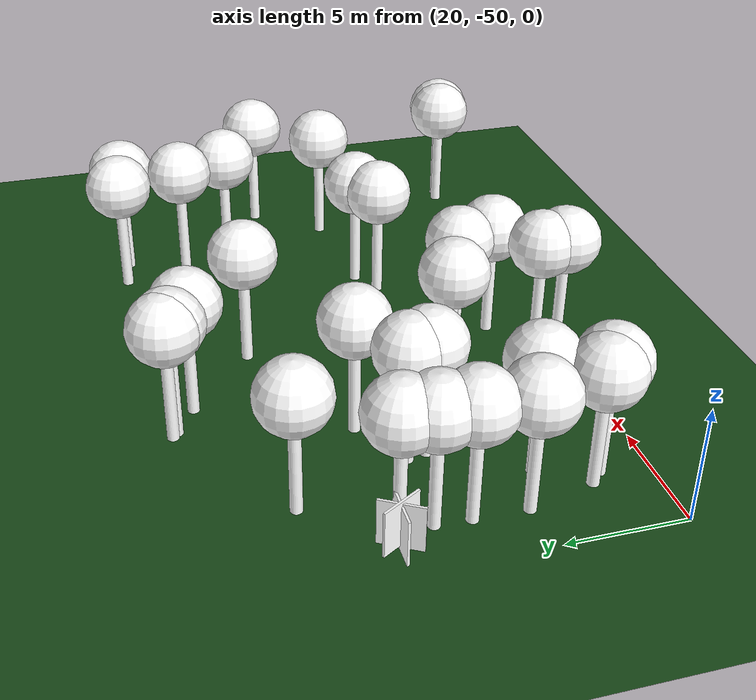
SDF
<sdf version="1.8">
 <world name="forest_world">
  <model name="fire_11">
   <pose>21.34 -39.31 1.00 0 0 0.00</pose>
   <static>true</static>
   <link name="fire_link">
    <visual name="fire_11_fire_main_0">
     <geometry><box><size>1.80 0.10 2.00</size></box></geometry>
     <material>
      <ambient>0.7 0.35 0.0 1</ambient>
      <diffuse>1 1 1 1</diffuse>
      <specular>0 0 0 1</specular>
      <emissive>0 0 0 1</emissive>
      <pbr>
       <metal><albedo_map>textures/fire.png</albedo_map><metalness>0.0</metalness><roughness>0.6</roughness></metal>
      </pbr>
     </material>
     <transparency>0.0</transparency>
     <cast_shadows>false</cast_shadows>
    </visual>
    <visual name="fire_11_fire_60_1">
     <pose>0.00 0.00 0.10 0 0 1.05</pose>
     <geometry><box><size>1.80 0.10 2.00</size></box></geometry>
     <material>
      <ambient>0.7 0.35 0.0 1</ambient>
      <diffuse>1 1 1 1</diffuse>
      <specular>0 0 0 1</specular>
      <emissive>0 0 0 1</emissive>
      <pbr>
       <metal><albedo_map>textures/fire.png</albedo_map><metalness>0.0</metalness><roughness>0.6</roughness></metal>
      </pbr>
     </material>
     <transparency>0.0</transparency>
     <cast_shadows>false</cast_shadows>
    </visual>
    <visual name="fire_11_fire_120_2">
     <pose>0.00 0.00 0.20 0 0 2.09</pose>
     <geometry><box><size>1.80 0.10 2.00</size></box></geometry>
     <material>
      <ambient>0.7 0.35 0.0 1</ambient>
      <diffuse>1 1 1 1</diffuse>
      <specular>0 0 0 1</specular>
      <emissive>0 0 0 1</emissive>
      <pbr>
       <metal><albedo_map>textures/fire.png</albedo_map><metalness>0.0</metalness><roughness>0.6</roughness></metal>
      </pbr>
     </material>
     <transparency>0.0</transparency>
     <cast_shadows>false</cast_shadows>
    </visual>
    <light type="point" name="fire_11_light_0">
     <pose>0.40 0.00 0.50 0 0 0</pose>
     <diffuse>1.0 0.7 0.3 1</diffuse>
     <specular>1.0 0.8 0.3 1</specular>
     <intensity>2</intensity>
     <attenuation>
      <range>2</range>
      <constant>0.1</constant>
      <linear>0.05</linear>
      <quadratic>0.02</quadratic>
     </attenuation>
     <cast_shadows>false</cast_shadows>
    </light>
    <light type="point" name="fire_11_light_1">
     <pose>-0.20 0.35 0.50 0 0 0</pose>
     <diffuse>1.0 0.7 0.3 1</diffuse>
     <specular>1.0 0.8 0.3 1</specular>
     <intensity>2</intensity>
     <attenuation>
      <range>2</range>
      <constant>0.1</constant>
      <linear>0.05</linear>
      <quadratic>0.02</quadratic>
     </attenuation>
     <cast_shadows>false</cast_shadows>
    </light>
    <light type="point" name="fire_11_light_2">
     <pose>-0.20 -0.35 0.50 0 0 0</pose>
     <diffuse>1.0 0.7 0.3 1</diffuse>
     <specular>1.0 0.8 0.3 1</specular>
     <intensity>2</intensity>
     <attenuation>
      <range>2</range>
      <constant>0.1</constant>
      <linear>0.05</linear>
      <quadratic>0.02</quadratic>
     </attenuation>
     <cast_shadows>false</cast_shadows>
    </light>
   </link>
   <plugin filename="libignition-gazebo-pose-publisher-system.so" name="ignition::gazebo::systems::PosePublisher">
    <frame_id>world</frame_id>
    <publish_link_pose>true</publish_link_pose>
    <use_pose_vector_msg>true</use_pose_vector_msg>
    <static_publisher>true</static_publisher>
    <static_update_frequency>1</static_update_frequency>
   </plugin>
  </model>
  <model name="tree_simple494">
   <static>1</static>
   <link name="link">
    <pose>0 0 0.1 0 -0 0</pose>
    <collision name="collision_trunk">
     <pose>0 0 2 0 -0 0</pose>
     <geometry><cylinder><radius>0.25</radius><length>4</length></cylinder></geometry>
    </collision>
    <collision name="collision_treetop">
     <pose>0 0 5.2 0 -0 0</pose>
     <geometry><sphere><radius>1.5</radius></sphere></geometry>
    </collision>
    <visual name="trunk">
     <pose>0 0 2 0 -0 0</pose>
     <geometry><cylinder><radius>0.25</radius><length>4</length></cylinder></geometry>
     <material>
      <ambient>0.5 0.5 0.5 1</ambient>
      <diffuse>1.0 1.0 1.0 1</diffuse>
      <specular>0.0 0.0 0.0 1</specular>
      <pbr>
       <metal>
        <albedo_map>../worlds/textures/tree_simple_trunk.jpg</albedo_map>
        <metalness>0.0</metalness>
        <roughness>0.8</roughness>
       </metal>
      </pbr>
     </material>
    </visual>
    <visual name="treetop">
     <pose>0 0 5.2 0 -0 0</pose>
     <geometry><sphere><radius>1.5</radius></sphere></geometry>
     <material>
      <ambient>0.5 0.5 0.5 1</ambient>
      <diffuse>1.0 1.0 1.0 1</diffuse>
      <specular>0.0 0.0 0.0 1</specular>
      <pbr>
       <metal>
        <albedo_map>../worlds/textures/tree_simple_treetop.jpg</albedo_map>
        <metalness>0.0</metalness>
        <roughness>0.9</roughness>
       </metal>
      </pbr>
     </material>
    </visual>
   </link>
   <pose>39.6521252177 -42.647901406 0 0 -0 0</pose>
  </model>
  <model name="tree_simple456">
   <static>1</static>
   <link name="link">
    <pose>0 0 0.1 0 -0 0</pose>
    <collision name="collision_trunk">
     <pose>0 0 2 0 -0 0</pose>
     <geometry><cylinder><radius>0.25</radius><length>4</length></cylinder></geometry>
    </collision>
    <collision name="collision_treetop">
     <pose>0 0 5.2 0 -0 0</pose>
     <geometry><sphere><radius>1.5</radius></sphere></geometry>
    </collision>
    <visual name="trunk">
     <pose>0 0 2 0 -0 0</pose>
     <geometry><cylinder><radius>0.25</radius><length>4</length></cylinder></geometry>
     <material>
      <ambient>0.5 0.5 0.5 1</ambient>
      <diffuse>1.0 1.0 1.0 1</diffuse>
      <specular>0.0 0.0 0.0 1</specular>
      <pbr>
       <metal>
        <albedo_map>../worlds/textures/tree_simple_trunk.jpg</albedo_map>
        <metalness>0.0</metalness>
        <roughness>0.8</roughness>
       </metal>
      </pbr>
     </material>
    </visual>
    <visual name="treetop">
     <pose>0 0 5.2 0 -0 0</pose>
     <geometry><sphere><radius>1.5</radius></sphere></geometry>
     <material>
      <ambient>0.5 0.5 0.5 1</ambient>
      <diffuse>1.0 1.0 1.0 1</diffuse>
      <specular>0.0 0.0 0.0 1</specular>
      <pbr>
       <metal>
        <albedo_map>../worlds/textures/tree_simple_treetop.jpg</albedo_map>
        <metalness>0.0</metalness>
        <roughness>0.9</roughness>
       </metal>
      </pbr>
     </material>
    </visual>
   </link>
   <pose>23.2076568155 -47.8591592767 0 0 -0 0</pose>
  </model>
  <model name="tree_simple423">
   <static>1</static>
   <link name="link">
    <pose>0 0 0.1 0 -0 0</pose>
    <collision name="collision_trunk">
     <pose>0 0 2 0 -0 0</pose>
     <geometry><cylinder><radius>0.25</radius><length>4</length></cylinder></geometry>
    </collision>
    <collision name="collision_treetop">
     <pose>0 0 5.2 0 -0 0</pose>
     <geometry><sphere><radius>1.5</radius></sphere></geometry>
    </collision>
    <visual name="trunk">
     <pose>0 0 2 0 -0 0</pose>
     <geometry><cylinder><radius>0.25</radius><length>4</length></cylinder></geometry>
     <material>
      <ambient>0.5 0.5 0.5 1</ambient>
      <diffuse>1.0 1.0 1.0 1</diffuse>
      <specular>0.0 0.0 0.0 1</specular>
      <pbr>
       <metal>
        <albedo_map>../worlds/textures/tree_simple_trunk.jpg</albedo_map>
        <metalness>0.0</metalness>
        <roughness>0.8</roughness>
       </metal>
      </pbr>
     </material>
    </visual>
    <visual name="treetop">
     <pose>0 0 5.2 0 -0 0</pose>
     <geometry><sphere><radius>1.5</radius></sphere></geometry>
     <material>
      <ambient>0.5 0.5 0.5 1</ambient>
      <diffuse>1.0 1.0 1.0 1</diffuse>
      <specular>0.0 0.0 0.0 1</specular>
      <pbr>
       <metal>
        <albedo_map>../worlds/textures/tree_simple_treetop.jpg</albedo_map>
        <metalness>0.0</metalness>
        <roughness>0.9</roughness>
       </metal>
      </pbr>
     </material>
    </visual>
   </link>
   <pose>22.6666902857 -47.3463091406 0 0 -0 0</pose>
  </model>
  <model name="tree_simple422">
   <static>1</static>
   <link name="link">
    <pose>0 0 0.1 0 -0 0</pose>
    <collision name="collision_trunk">
     <pose>0 0 2 0 -0 0</pose>
     <geometry><cylinder><radius>0.25</radius><length>4</length></cylinder></geometry>
    </collision>
    <collision name="collision_treetop">
     <pose>0 0 5.2 0 -0 0</pose>
     <geometry><sphere><radius>1.5</radius></sphere></geometry>
    </collision>
    <visual name="trunk">
     <pose>0 0 2 0 -0 0</pose>
     <geometry><cylinder><radius>0.25</radius><length>4</length></cylinder></geometry>
     <material>
      <ambient>0.5 0.5 0.5 1</ambient>
      <diffuse>1.0 1.0 1.0 1</diffuse>
      <specular>0.0 0.0 0.0 1</specular>
      <pbr>
       <metal>
        <albedo_map>../worlds/textures/tree_simple_trunk.jpg</albedo_map>
        <metalness>0.0</metalness>
        <roughness>0.8</roughness>
       </metal>
      </pbr>
     </material>
    </visual>
    <visual name="treetop">
     <pose>0 0 5.2 0 -0 0</pose>
     <geometry><sphere><radius>1.5</radius></sphere></geometry>
     <material>
      <ambient>0.5 0.5 0.5 1</ambient>
      <diffuse>1.0 1.0 1.0 1</diffuse>
      <specular>0.0 0.0 0.0 1</specular>
      <pbr>
       <metal>
        <albedo_map>../worlds/textures/tree_simple_treetop.jpg</albedo_map>
        <metalness>0.0</metalness>
        <roughness>0.9</roughness>
       </metal>
      </pbr>
     </material>
    </visual>
   </link>
   <pose>46.9340594409 -49.3003062786 0 0 -0 0</pose>
  </model>
  <model name="tree_simple406">
   <static>1</static>
   <link name="link">
    <pose>0 0 0.1 0 -0 0</pose>
    <collision name="collision_trunk">
     <pose>0 0 2 0 -0 0</pose>
     <geometry><cylinder><radius>0.25</radius><length>4</length></cylinder></geometry>
    </collision>
    <collision name="collision_treetop">
     <pose>0 0 5.2 0 -0 0</pose>
     <geometry><sphere><radius>1.5</radius></sphere></geometry>
    </collision>
    <visual name="trunk">
     <pose>0 0 2 0 -0 0</pose>
     <geometry><cylinder><radius>0.25</radius><length>4</length></cylinder></geometry>
     <material>
      <ambient>0.5 0.5 0.5 1</ambient>
      <diffuse>1.0 1.0 1.0 1</diffuse>
      <specular>0.0 0.0 0.0 1</specular>
      <pbr>
       <metal>
        <albedo_map>../worlds/textures/tree_simple_trunk.jpg</albedo_map>
        <metalness>0.0</metalness>
        <roughness>0.8</roughness>
       </metal>
      </pbr>
     </material>
    </visual>
    <visual name="treetop">
     <pose>0 0 5.2 0 -0 0</pose>
     <geometry><sphere><radius>1.5</radius></sphere></geometry>
     <material>
      <ambient>0.5 0.5 0.5 1</ambient>
      <diffuse>1.0 1.0 1.0 1</diffuse>
      <specular>0.0 0.0 0.0 1</specular>
      <pbr>
       <metal>
        <albedo_map>../worlds/textures/tree_simple_treetop.jpg</albedo_map>
        <metalness>0.0</metalness>
        <roughness>0.9</roughness>
       </metal>
      </pbr>
     </material>
    </visual>
   </link>
   <pose>31.8934217089 -48.8403630258 0 0 -0 0</pose>
  </model>
  <model name="tree_simple399">
   <static>1</static>
   <link name="link">
    <pose>0 0 0.1 0 -0 0</pose>
    <collision name="collision_trunk">
     <pose>0 0 2 0 -0 0</pose>
     <geometry><cylinder><radius>0.25</radius><length>4</length></cylinder></geometry>
    </collision>
    <collision name="collision_treetop">
     <pose>0 0 5.2 0 -0 0</pose>
     <geometry><sphere><radius>1.5</radius></sphere></geometry>
    </collision>
    <visual name="trunk">
     <pose>0 0 2 0 -0 0</pose>
     <geometry><cylinder><radius>0.25</radius><length>4</length></cylinder></geometry>
     <material>
      <ambient>0.5 0.5 0.5 1</ambient>
      <diffuse>1.0 1.0 1.0 1</diffuse>
      <specular>0.0 0.0 0.0 1</specular>
      <pbr>
       <metal>
        <albedo_map>../worlds/textures/tree_simple_trunk.jpg</albedo_map>
        <metalness>0.0</metalness>
        <roughness>0.8</roughness>
       </metal>
      </pbr>
     </material>
    </visual>
    <visual name="treetop">
     <pose>0 0 5.2 0 -0 0</pose>
     <geometry><sphere><radius>1.5</radius></sphere></geometry>
     <material>
      <ambient>0.5 0.5 0.5 1</ambient>
      <diffuse>1.0 1.0 1.0 1</diffuse>
      <specular>0.0 0.0 0.0 1</specular>
      <pbr>
       <metal>
        <albedo_map>../worlds/textures/tree_simple_treetop.jpg</albedo_map>
        <metalness>0.0</metalness>
        <roughness>0.9</roughness>
       </metal>
      </pbr>
     </material>
    </visual>
   </link>
   <pose>28.1463540184 -39.4724503771 0 0 -0 0</pose>
  </model>
  <model name="tree_simple362">
   <static>1</static>
   <link name="link">
    <pose>0 0 0.1 0 -0 0</pose>
    <collision name="collision_trunk">
     <pose>0 0 2 0 -0 0</pose>
     <geometry><cylinder><radius>0.25</radius><length>4</length></cylinder></geometry>
    </collision>
    <collision name="collision_treetop">
     <pose>0 0 5.2 0 -0 0</pose>
     <geometry><sphere><radius>1.5</radius></sphere></geometry>
    </collision>
    <visual name="trunk">
     <pose>0 0 2 0 -0 0</pose>
     <geometry><cylinder><radius>0.25</radius><length>4</length></cylinder></geometry>
     <material>
      <ambient>0.5 0.5 0.5 1</ambient>
      <diffuse>1.0 1.0 1.0 1</diffuse>
      <specular>0.0 0.0 0.0 1</specular>
      <pbr>
       <metal>
        <albedo_map>../worlds/textures/tree_simple_trunk.jpg</albedo_map>
        <metalness>0.0</metalness>
        <roughness>0.8</roughness>
       </metal>
      </pbr>
     </material>
    </visual>
    <visual name="treetop">
     <pose>0 0 5.2 0 -0 0</pose>
     <geometry><sphere><radius>1.5</radius></sphere></geometry>
     <material>
      <ambient>0.5 0.5 0.5 1</ambient>
      <diffuse>1.0 1.0 1.0 1</diffuse>
      <specular>0.0 0.0 0.0 1</specular>
      <pbr>
       <metal>
        <albedo_map>../worlds/textures/tree_simple_treetop.jpg</albedo_map>
        <metalness>0.0</metalness>
        <roughness>0.9</roughness>
       </metal>
      </pbr>
     </material>
    </visual>
   </link>
   <pose>44.985496552 -42.1503793978 0 0 -0 0</pose>
  </model>
  <model name="tree_simple355">
   <static>1</static>
   <link name="link">
    <pose>0 0 0.1 0 -0 0</pose>
    <collision name="collision_trunk">
     <pose>0 0 2 0 -0 0</pose>
     <geometry><cylinder><radius>0.25</radius><length>4</length></cylinder></geometry>
    </collision>
    <collision name="collision_treetop">
     <pose>0 0 5.2 0 -0 0</pose>
     <geometry><sphere><radius>1.5</radius></sphere></geometry>
    </collision>
    <visual name="trunk">
     <pose>0 0 2 0 -0 0</pose>
     <geometry><cylinder><radius>0.25</radius><length>4</length></cylinder></geometry>
     <material>
      <ambient>0.5 0.5 0.5 1</ambient>
      <diffuse>1.0 1.0 1.0 1</diffuse>
      <specular>0.0 0.0 0.0 1</specular>
      <pbr>
       <metal>
        <albedo_map>../worlds/textures/tree_simple_trunk.jpg</albedo_map>
        <metalness>0.0</metalness>
        <roughness>0.8</roughness>
       </metal>
      </pbr>
     </material>
    </visual>
    <visual name="treetop">
     <pose>0 0 5.2 0 -0 0</pose>
     <geometry><sphere><radius>1.5</radius></sphere></geometry>
     <material>
      <ambient>0.5 0.5 0.5 1</ambient>
      <diffuse>1.0 1.0 1.0 1</diffuse>
      <specular>0.0 0.0 0.0 1</specular>
      <pbr>
       <metal>
        <albedo_map>../worlds/textures/tree_simple_treetop.jpg</albedo_map>
        <metalness>0.0</metalness>
        <roughness>0.9</roughness>
       </metal>
      </pbr>
     </material>
    </visual>
   </link>
   <pose>25.975286884 -41.7874404901 0 0 -0 0</pose>
  </model>
  <model name="tree_simple329">
   <static>1</static>
   <link name="link">
    <pose>0 0 0.1 0 -0 0</pose>
    <collision name="collision_trunk">
     <pose>0 0 2 0 -0 0</pose>
     <geometry><cylinder><radius>0.25</radius><length>4</length></cylinder></geometry>
    </collision>
    <collision name="collision_treetop">
     <pose>0 0 5.2 0 -0 0</pose>
     <geometry><sphere><radius>1.5</radius></sphere></geometry>
    </collision>
    <visual name="trunk">
     <pose>0 0 2 0 -0 0</pose>
     <geometry><cylinder><radius>0.25</radius><length>4</length></cylinder></geometry>
     <material>
      <ambient>0.5 0.5 0.5 1</ambient>
      <diffuse>1.0 1.0 1.0 1</diffuse>
      <specular>0.0 0.0 0.0 1</specular>
      <pbr>
       <metal>
        <albedo_map>../worlds/textures/tree_simple_trunk.jpg</albedo_map>
        <metalness>0.0</metalness>
        <roughness>0.8</roughness>
       </metal>
      </pbr>
     </material>
    </visual>
    <visual name="treetop">
     <pose>0 0 5.2 0 -0 0</pose>
     <geometry><sphere><radius>1.5</radius></sphere></geometry>
     <material>
      <ambient>0.5 0.5 0.5 1</ambient>
      <diffuse>1.0 1.0 1.0 1</diffuse>
      <specular>0.0 0.0 0.0 1</specular>
      <pbr>
       <metal>
        <albedo_map>../worlds/textures/tree_simple_treetop.jpg</albedo_map>
        <metalness>0.0</metalness>
        <roughness>0.9</roughness>
       </metal>
      </pbr>
     </material>
    </visual>
   </link>
   <pose>22.038430334 -40.7859522783 0 0 -0 0</pose>
  </model>
  <model name="tree_simple321">
   <static>1</static>
   <link name="link">
    <pose>0 0 0.1 0 -0 0</pose>
    <collision name="collision_trunk">
     <pose>0 0 2 0 -0 0</pose>
     <geometry><cylinder><radius>0.25</radius><length>4</length></cylinder></geometry>
    </collision>
    <collision name="collision_treetop">
     <pose>0 0 5.2 0 -0 0</pose>
     <geometry><sphere><radius>1.5</radius></sphere></geometry>
    </collision>
    <visual name="trunk">
     <pose>0 0 2 0 -0 0</pose>
     <geometry><cylinder><radius>0.25</radius><length>4</length></cylinder></geometry>
     <material>
      <ambient>0.5 0.5 0.5 1</ambient>
      <diffuse>1.0 1.0 1.0 1</diffuse>
      <specular>0.0 0.0 0.0 1</specular>
      <pbr>
       <metal>
        <albedo_map>../worlds/textures/tree_simple_trunk.jpg</albedo_map>
        <metalness>0.0</metalness>
        <roughness>0.8</roughness>
       </metal>
      </pbr>
     </material>
    </visual>
    <visual name="treetop">
     <pose>0 0 5.2 0 -0 0</pose>
     <geometry><sphere><radius>1.5</radius></sphere></geometry>
     <material>
      <ambient>0.5 0.5 0.5 1</ambient>
      <diffuse>1.0 1.0 1.0 1</diffuse>
      <specular>0.0 0.0 0.0 1</specular>
      <pbr>
       <metal>
        <albedo_map>../worlds/textures/tree_simple_treetop.jpg</albedo_map>
        <metalness>0.0</metalness>
        <roughness>0.9</roughness>
       </metal>
      </pbr>
     </material>
    </visual>
   </link>
   <pose>42.046648374 -31.7938593585 0 0 -0 0</pose>
  </model>
  <model name="tree_simple300">
   <static>1</static>
   <link name="link">
    <pose>0 0 0.1 0 -0 0</pose>
    <collision name="collision_trunk">
     <pose>0 0 2 0 -0 0</pose>
     <geometry><cylinder><radius>0.25</radius><length>4</length></cylinder></geometry>
    </collision>
    <collision name="collision_treetop">
     <pose>0 0 5.2 0 -0 0</pose>
     <geometry><sphere><radius>1.5</radius></sphere></geometry>
    </collision>
    <visual name="trunk">
     <pose>0 0 2 0 -0 0</pose>
     <geometry><cylinder><radius>0.25</radius><length>4</length></cylinder></geometry>
     <material>
      <ambient>0.5 0.5 0.5 1</ambient>
      <diffuse>1.0 1.0 1.0 1</diffuse>
      <specular>0.0 0.0 0.0 1</specular>
      <pbr>
       <metal>
        <albedo_map>../worlds/textures/tree_simple_trunk.jpg</albedo_map>
        <metalness>0.0</metalness>
        <roughness>0.8</roughness>
       </metal>
      </pbr>
     </material>
    </visual>
    <visual name="treetop">
     <pose>0 0 5.2 0 -0 0</pose>
     <geometry><sphere><radius>1.5</radius></sphere></geometry>
     <material>
      <ambient>0.5 0.5 0.5 1</ambient>
      <diffuse>1.0 1.0 1.0 1</diffuse>
      <specular>0.0 0.0 0.0 1</specular>
      <pbr>
       <metal>
        <albedo_map>../worlds/textures/tree_simple_treetop.jpg</albedo_map>
        <metalness>0.0</metalness>
        <roughness>0.9</roughness>
       </metal>
      </pbr>
     </material>
    </visual>
   </link>
   <pose>34.2893754597 -36.2522401159 0 0 -0 0</pose>
  </model>
  <model name="tree_simple280">
   <static>1</static>
   <link name="link">
    <pose>0 0 0.1 0 -0 0</pose>
    <collision name="collision_trunk">
     <pose>0 0 2 0 -0 0</pose>
     <geometry><cylinder><radius>0.25</radius><length>4</length></cylinder></geometry>
    </collision>
    <collision name="collision_treetop">
     <pose>0 0 5.2 0 -0 0</pose>
     <geometry><sphere><radius>1.5</radius></sphere></geometry>
    </collision>
    <visual name="trunk">
     <pose>0 0 2 0 -0 0</pose>
     <geometry><cylinder><radius>0.25</radius><length>4</length></cylinder></geometry>
     <material>
      <ambient>0.5 0.5 0.5 1</ambient>
      <diffuse>1.0 1.0 1.0 1</diffuse>
      <specular>0.0 0.0 0.0 1</specular>
      <pbr>
       <metal>
        <albedo_map>../worlds/textures/tree_simple_trunk.jpg</albedo_map>
        <metalness>0.0</metalness>
        <roughness>0.8</roughness>
       </metal>
      </pbr>
     </material>
    </visual>
    <visual name="treetop">
     <pose>0 0 5.2 0 -0 0</pose>
     <geometry><sphere><radius>1.5</radius></sphere></geometry>
     <material>
      <ambient>0.5 0.5 0.5 1</ambient>
      <diffuse>1.0 1.0 1.0 1</diffuse>
      <specular>0.0 0.0 0.0 1</specular>
      <pbr>
       <metal>
        <albedo_map>../worlds/textures/tree_simple_treetop.jpg</albedo_map>
        <metalness>0.0</metalness>
        <roughness>0.9</roughness>
       </metal>
      </pbr>
     </material>
    </visual>
   </link>
   <pose>42.8499474232 -34.7520527621 0 0 -0 0</pose>
  </model>
  <model name="tree_simple261">
   <static>1</static>
   <link name="link">
    <pose>0 0 0.1 0 -0 0</pose>
    <collision name="collision_trunk">
     <pose>0 0 2 0 -0 0</pose>
     <geometry><cylinder><radius>0.25</radius><length>4</length></cylinder></geometry>
    </collision>
    <collision name="collision_treetop">
     <pose>0 0 5.2 0 -0 0</pose>
     <geometry><sphere><radius>1.5</radius></sphere></geometry>
    </collision>
    <visual name="trunk">
     <pose>0 0 2 0 -0 0</pose>
     <geometry><cylinder><radius>0.25</radius><length>4</length></cylinder></geometry>
     <material>
      <ambient>0.5 0.5 0.5 1</ambient>
      <diffuse>1.0 1.0 1.0 1</diffuse>
      <specular>0.0 0.0 0.0 1</specular>
      <pbr>
       <metal>
        <albedo_map>../worlds/textures/tree_simple_trunk.jpg</albedo_map>
        <metalness>0.0</metalness>
        <roughness>0.8</roughness>
       </metal>
      </pbr>
     </material>
    </visual>
    <visual name="treetop">
     <pose>0 0 5.2 0 -0 0</pose>
     <geometry><sphere><radius>1.5</radius></sphere></geometry>
     <material>
      <ambient>0.5 0.5 0.5 1</ambient>
      <diffuse>1.0 1.0 1.0 1</diffuse>
      <specular>0.0 0.0 0.0 1</specular>
      <pbr>
       <metal>
        <albedo_map>../worlds/textures/tree_simple_treetop.jpg</albedo_map>
        <metalness>0.0</metalness>
        <roughness>0.9</roughness>
       </metal>
      </pbr>
     </material>
    </visual>
   </link>
   <pose>33.7827414367 -47.2764136507 0 0 -0 0</pose>
  </model>
  <model name="tree_simple233">
   <static>1</static>
   <link name="link">
    <pose>0 0 0.1 0 -0 0</pose>
    <collision name="collision_trunk">
     <pose>0 0 2 0 -0 0</pose>
     <geometry><cylinder><radius>0.25</radius><length>4</length></cylinder></geometry>
    </collision>
    <collision name="collision_treetop">
     <pose>0 0 5.2 0 -0 0</pose>
     <geometry><sphere><radius>1.5</radius></sphere></geometry>
    </collision>
    <visual name="trunk">
     <pose>0 0 2 0 -0 0</pose>
     <geometry><cylinder><radius>0.25</radius><length>4</length></cylinder></geometry>
     <material>
      <ambient>0.5 0.5 0.5 1</ambient>
      <diffuse>1.0 1.0 1.0 1</diffuse>
      <specular>0.0 0.0 0.0 1</specular>
      <pbr>
       <metal>
        <albedo_map>../worlds/textures/tree_simple_trunk.jpg</albedo_map>
        <metalness>0.0</metalness>
        <roughness>0.8</roughness>
       </metal>
      </pbr>
     </material>
    </visual>
    <visual name="treetop">
     <pose>0 0 5.2 0 -0 0</pose>
     <geometry><sphere><radius>1.5</radius></sphere></geometry>
     <material>
      <ambient>0.5 0.5 0.5 1</ambient>
      <diffuse>1.0 1.0 1.0 1</diffuse>
      <specular>0.0 0.0 0.0 1</specular>
      <pbr>
       <metal>
        <albedo_map>../worlds/textures/tree_simple_treetop.jpg</albedo_map>
        <metalness>0.0</metalness>
        <roughness>0.9</roughness>
       </metal>
      </pbr>
     </material>
    </visual>
   </link>
   <pose>21.929125889 -44.4760714013 0 0 -0 0</pose>
  </model>
  <model name="tree_simple225">
   <static>1</static>
   <link name="link">
    <pose>0 0 0.1 0 -0 0</pose>
    <collision name="collision_trunk">
     <pose>0 0 2 0 -0 0</pose>
     <geometry><cylinder><radius>0.25</radius><length>4</length></cylinder></geometry>
    </collision>
    <collision name="collision_treetop">
     <pose>0 0 5.2 0 -0 0</pose>
     <geometry><sphere><radius>1.5</radius></sphere></geometry>
    </collision>
    <visual name="trunk">
     <pose>0 0 2 0 -0 0</pose>
     <geometry><cylinder><radius>0.25</radius><length>4</length></cylinder></geometry>
     <material>
      <ambient>0.5 0.5 0.5 1</ambient>
      <diffuse>1.0 1.0 1.0 1</diffuse>
      <specular>0.0 0.0 0.0 1</specular>
      <pbr>
       <metal>
        <albedo_map>../worlds/textures/tree_simple_trunk.jpg</albedo_map>
        <metalness>0.0</metalness>
        <roughness>0.8</roughness>
       </metal>
      </pbr>
     </material>
    </visual>
    <visual name="treetop">
     <pose>0 0 5.2 0 -0 0</pose>
     <geometry><sphere><radius>1.5</radius></sphere></geometry>
     <material>
      <ambient>0.5 0.5 0.5 1</ambient>
      <diffuse>1.0 1.0 1.0 1</diffuse>
      <specular>0.0 0.0 0.0 1</specular>
      <pbr>
       <metal>
        <albedo_map>../worlds/textures/tree_simple_treetop.jpg</albedo_map>
        <metalness>0.0</metalness>
        <roughness>0.9</roughness>
       </metal>
      </pbr>
     </material>
    </visual>
   </link>
   <pose>30.586439973 -44.3528824328 0 0 -0 0</pose>
  </model>
  <model name="tree_simple207">
   <static>1</static>
   <link name="link">
    <pose>0 0 0.1 0 -0 0</pose>
    <collision name="collision_trunk">
     <pose>0 0 2 0 -0 0</pose>
     <geometry><cylinder><radius>0.25</radius><length>4</length></cylinder></geometry>
    </collision>
    <collision name="collision_treetop">
     <pose>0 0 5.2 0 -0 0</pose>
     <geometry><sphere><radius>1.5</radius></sphere></geometry>
    </collision>
    <visual name="trunk">
     <pose>0 0 2 0 -0 0</pose>
     <geometry><cylinder><radius>0.25</radius><length>4</length></cylinder></geometry>
     <material>
      <ambient>0.5 0.5 0.5 1</ambient>
      <diffuse>1.0 1.0 1.0 1</diffuse>
      <specular>0.0 0.0 0.0 1</specular>
      <pbr>
       <metal>
        <albedo_map>../worlds/textures/tree_simple_trunk.jpg</albedo_map>
        <metalness>0.0</metalness>
        <roughness>0.8</roughness>
       </metal>
      </pbr>
     </material>
    </visual>
    <visual name="treetop">
     <pose>0 0 5.2 0 -0 0</pose>
     <geometry><sphere><radius>1.5</radius></sphere></geometry>
     <material>
      <ambient>0.5 0.5 0.5 1</ambient>
      <diffuse>1.0 1.0 1.0 1</diffuse>
      <specular>0.0 0.0 0.0 1</specular>
      <pbr>
       <metal>
        <albedo_map>../worlds/textures/tree_simple_treetop.jpg</albedo_map>
        <metalness>0.0</metalness>
        <roughness>0.9</roughness>
       </metal>
      </pbr>
     </material>
    </visual>
   </link>
   <pose>29.7171513821 -32.5331350523 0 0 -0 0</pose>
  </model>
  <model name="tree_simple202">
   <static>1</static>
   <link name="link">
    <pose>0 0 0.1 0 -0 0</pose>
    <collision name="collision_trunk">
     <pose>0 0 2 0 -0 0</pose>
     <geometry><cylinder><radius>0.25</radius><length>4</length></cylinder></geometry>
    </collision>
    <collision name="collision_treetop">
     <pose>0 0 5.2 0 -0 0</pose>
     <geometry><sphere><radius>1.5</radius></sphere></geometry>
    </collision>
    <visual name="trunk">
     <pose>0 0 2 0 -0 0</pose>
     <geometry><cylinder><radius>0.25</radius><length>4</length></cylinder></geometry>
     <material>
      <ambient>0.5 0.5 0.5 1</ambient>
      <diffuse>1.0 1.0 1.0 1</diffuse>
      <specular>0.0 0.0 0.0 1</specular>
      <pbr>
       <metal>
        <albedo_map>../worlds/textures/tree_simple_trunk.jpg</albedo_map>
        <metalness>0.0</metalness>
        <roughness>0.8</roughness>
       </metal>
      </pbr>
     </material>
    </visual>
    <visual name="treetop">
     <pose>0 0 5.2 0 -0 0</pose>
     <geometry><sphere><radius>1.5</radius></sphere></geometry>
     <material>
      <ambient>0.5 0.5 0.5 1</ambient>
      <diffuse>1.0 1.0 1.0 1</diffuse>
      <specular>0.0 0.0 0.0 1</specular>
      <pbr>
       <metal>
        <albedo_map>../worlds/textures/tree_simple_treetop.jpg</albedo_map>
        <metalness>0.0</metalness>
        <roughness>0.9</roughness>
       </metal>
      </pbr>
     </material>
    </visual>
   </link>
   <pose>33.1651643467 -45.5260416914 0 0 -0 0</pose>
  </model>
  <model name="tree_simple182">
   <static>1</static>
   <link name="link">
    <pose>0 0 0.1 0 -0 0</pose>
    <collision name="collision_trunk">
     <pose>0 0 2 0 -0 0</pose>
     <geometry><cylinder><radius>0.25</radius><length>4</length></cylinder></geometry>
    </collision>
    <collision name="collision_treetop">
     <pose>0 0 5.2 0 -0 0</pose>
     <geometry><sphere><radius>1.5</radius></sphere></geometry>
    </collision>
    <visual name="trunk">
     <pose>0 0 2 0 -0 0</pose>
     <geometry><cylinder><radius>0.25</radius><length>4</length></cylinder></geometry>
     <material>
      <ambient>0.5 0.5 0.5 1</ambient>
      <diffuse>1.0 1.0 1.0 1</diffuse>
      <specular>0.0 0.0 0.0 1</specular>
      <pbr>
       <metal>
        <albedo_map>../worlds/textures/tree_simple_trunk.jpg</albedo_map>
        <metalness>0.0</metalness>
        <roughness>0.8</roughness>
       </metal>
      </pbr>
     </material>
    </visual>
    <visual name="treetop">
     <pose>0 0 5.2 0 -0 0</pose>
     <geometry><sphere><radius>1.5</radius></sphere></geometry>
     <material>
      <ambient>0.5 0.5 0.5 1</ambient>
      <diffuse>1.0 1.0 1.0 1</diffuse>
      <specular>0.0 0.0 0.0 1</specular>
      <pbr>
       <metal>
        <albedo_map>../worlds/textures/tree_simple_treetop.jpg</albedo_map>
        <metalness>0.0</metalness>
        <roughness>0.9</roughness>
       </metal>
      </pbr>
     </material>
    </visual>
   </link>
   <pose>31.0475626231 -33.3896196972 0 0 -0 0</pose>
  </model>
  <model name="tree_simple173">
   <static>1</static>
   <link name="link">
    <pose>0 0 0.1 0 -0 0</pose>
    <collision name="collision_trunk">
     <pose>0 0 2 0 -0 0</pose>
     <geometry><cylinder><radius>0.25</radius><length>4</length></cylinder></geometry>
    </collision>
    <collision name="collision_treetop">
     <pose>0 0 5.2 0 -0 0</pose>
     <geometry><sphere><radius>1.5</radius></sphere></geometry>
    </collision>
    <visual name="trunk">
     <pose>0 0 2 0 -0 0</pose>
     <geometry><cylinder><radius>0.25</radius><length>4</length></cylinder></geometry>
     <material>
      <ambient>0.5 0.5 0.5 1</ambient>
      <diffuse>1.0 1.0 1.0 1</diffuse>
      <specular>0.0 0.0 0.0 1</specular>
      <pbr>
       <metal>
        <albedo_map>../worlds/textures/tree_simple_trunk.jpg</albedo_map>
        <metalness>0.0</metalness>
        <roughness>0.8</roughness>
       </metal>
      </pbr>
     </material>
    </visual>
    <visual name="treetop">
     <pose>0 0 5.2 0 -0 0</pose>
     <geometry><sphere><radius>1.5</radius></sphere></geometry>
     <material>
      <ambient>0.5 0.5 0.5 1</ambient>
      <diffuse>1.0 1.0 1.0 1</diffuse>
      <specular>0.0 0.0 0.0 1</specular>
      <pbr>
       <metal>
        <albedo_map>../worlds/textures/tree_simple_treetop.jpg</albedo_map>
        <metalness>0.0</metalness>
        <roughness>0.9</roughness>
       </metal>
      </pbr>
     </material>
    </visual>
   </link>
   <pose>43.8187371286 -37.037678565 0 0 -0 0</pose>
  </model>
  <model name="tree_simple169">
   <static>1</static>
   <link name="link">
    <pose>0 0 0.1 0 -0 0</pose>
    <collision name="collision_trunk">
     <pose>0 0 2 0 -0 0</pose>
     <geometry><cylinder><radius>0.25</radius><length>4</length></cylinder></geometry>
    </collision>
    <collision name="collision_treetop">
     <pose>0 0 5.2 0 -0 0</pose>
     <geometry><sphere><radius>1.5</radius></sphere></geometry>
    </collision>
    <visual name="trunk">
     <pose>0 0 2 0 -0 0</pose>
     <geometry><cylinder><radius>0.25</radius><length>4</length></cylinder></geometry>
     <material>
      <ambient>0.5 0.5 0.5 1</ambient>
      <diffuse>1.0 1.0 1.0 1</diffuse>
      <specular>0.0 0.0 0.0 1</specular>
      <pbr>
       <metal>
        <albedo_map>../worlds/textures/tree_simple_trunk.jpg</albedo_map>
        <metalness>0.0</metalness>
        <roughness>0.8</roughness>
       </metal>
      </pbr>
     </material>
    </visual>
    <visual name="treetop">
     <pose>0 0 5.2 0 -0 0</pose>
     <geometry><sphere><radius>1.5</radius></sphere></geometry>
     <material>
      <ambient>0.5 0.5 0.5 1</ambient>
      <diffuse>1.0 1.0 1.0 1</diffuse>
      <specular>0.0 0.0 0.0 1</specular>
      <pbr>
       <metal>
        <albedo_map>../worlds/textures/tree_simple_treetop.jpg</albedo_map>
        <metalness>0.0</metalness>
        <roughness>0.9</roughness>
       </metal>
      </pbr>
     </material>
    </visual>
   </link>
   <pose>25.7710646255 -40.9498520998 0 0 -0 0</pose>
  </model>
  <model name="tree_simple153">
   <static>1</static>
   <link name="link">
    <pose>0 0 0.1 0 -0 0</pose>
    <collision name="collision_trunk">
     <pose>0 0 2 0 -0 0</pose>
     <geometry><cylinder><radius>0.25</radius><length>4</length></cylinder></geometry>
    </collision>
    <collision name="collision_treetop">
     <pose>0 0 5.2 0 -0 0</pose>
     <geometry><sphere><radius>1.5</radius></sphere></geometry>
    </collision>
    <visual name="trunk">
     <pose>0 0 2 0 -0 0</pose>
     <geometry><cylinder><radius>0.25</radius><length>4</length></cylinder></geometry>
     <material>
      <ambient>0.5 0.5 0.5 1</ambient>
      <diffuse>1.0 1.0 1.0 1</diffuse>
      <specular>0.0 0.0 0.0 1</specular>
      <pbr>
       <metal>
        <albedo_map>../worlds/textures/tree_simple_trunk.jpg</albedo_map>
        <metalness>0.0</metalness>
        <roughness>0.8</roughness>
       </metal>
      </pbr>
     </material>
    </visual>
    <visual name="treetop">
     <pose>0 0 5.2 0 -0 0</pose>
     <geometry><sphere><radius>1.5</radius></sphere></geometry>
     <material>
      <ambient>0.5 0.5 0.5 1</ambient>
      <diffuse>1.0 1.0 1.0 1</diffuse>
      <specular>0.0 0.0 0.0 1</specular>
      <pbr>
       <metal>
        <albedo_map>../worlds/textures/tree_simple_treetop.jpg</albedo_map>
        <metalness>0.0</metalness>
        <roughness>0.9</roughness>
       </metal>
      </pbr>
     </material>
    </visual>
   </link>
   <pose>24.0970841452 -36.1585269214 0 0 -0 0</pose>
  </model>
  <model name="tree_simple137">
   <static>1</static>
   <link name="link">
    <pose>0 0 0.1 0 -0 0</pose>
    <collision name="collision_trunk">
     <pose>0 0 2 0 -0 0</pose>
     <geometry><cylinder><radius>0.25</radius><length>4</length></cylinder></geometry>
    </collision>
    <collision name="collision_treetop">
     <pose>0 0 5.2 0 -0 0</pose>
     <geometry><sphere><radius>1.5</radius></sphere></geometry>
    </collision>
    <visual name="trunk">
     <pose>0 0 2 0 -0 0</pose>
     <geometry><cylinder><radius>0.25</radius><length>4</length></cylinder></geometry>
     <material>
      <ambient>0.5 0.5 0.5 1</ambient>
      <diffuse>1.0 1.0 1.0 1</diffuse>
      <specular>0.0 0.0 0.0 1</specular>
      <pbr>
       <metal>
        <albedo_map>../worlds/textures/tree_simple_trunk.jpg</albedo_map>
        <metalness>0.0</metalness>
        <roughness>0.8</roughness>
       </metal>
      </pbr>
     </material>
    </visual>
    <visual name="treetop">
     <pose>0 0 5.2 0 -0 0</pose>
     <geometry><sphere><radius>1.5</radius></sphere></geometry>
     <material>
      <ambient>0.5 0.5 0.5 1</ambient>
      <diffuse>1.0 1.0 1.0 1</diffuse>
      <specular>0.0 0.0 0.0 1</specular>
      <pbr>
       <metal>
        <albedo_map>../worlds/textures/tree_simple_treetop.jpg</albedo_map>
        <metalness>0.0</metalness>
        <roughness>0.9</roughness>
       </metal>
      </pbr>
     </material>
    </visual>
   </link>
   <pose>43.7452610824 -32.0584108729 0 0 -0 0</pose>
  </model>
  <model name="tree_simple136">
   <static>1</static>
   <link name="link">
    <pose>0 0 0.1 0 -0 0</pose>
    <collision name="collision_trunk">
     <pose>0 0 2 0 -0 0</pose>
     <geometry><cylinder><radius>0.25</radius><length>4</length></cylinder></geometry>
    </collision>
    <collision name="collision_treetop">
     <pose>0 0 5.2 0 -0 0</pose>
     <geometry><sphere><radius>1.5</radius></sphere></geometry>
    </collision>
    <visual name="trunk">
     <pose>0 0 2 0 -0 0</pose>
     <geometry><cylinder><radius>0.25</radius><length>4</length></cylinder></geometry>
     <material>
      <ambient>0.5 0.5 0.5 1</ambient>
      <diffuse>1.0 1.0 1.0 1</diffuse>
      <specular>0.0 0.0 0.0 1</specular>
      <pbr>
       <metal>
        <albedo_map>../worlds/textures/tree_simple_trunk.jpg</albedo_map>
        <metalness>0.0</metalness>
        <roughness>0.8</roughness>
       </metal>
      </pbr>
     </material>
    </visual>
    <visual name="treetop">
     <pose>0 0 5.2 0 -0 0</pose>
     <geometry><sphere><radius>1.5</radius></sphere></geometry>
     <material>
      <ambient>0.5 0.5 0.5 1</ambient>
      <diffuse>1.0 1.0 1.0 1</diffuse>
      <specular>0.0 0.0 0.0 1</specular>
      <pbr>
       <metal>
        <albedo_map>../worlds/textures/tree_simple_treetop.jpg</albedo_map>
        <metalness>0.0</metalness>
        <roughness>0.9</roughness>
       </metal>
      </pbr>
     </material>
    </visual>
   </link>
   <pose>47.5460904113 -49.4529023421 0 0 -0 0</pose>
  </model>
  <model name="tree_simple115">
   <static>1</static>
   <link name="link">
    <pose>0 0 0.1 0 -0 0</pose>
    <collision name="collision_trunk">
     <pose>0 0 2 0 -0 0</pose>
     <geometry><cylinder><radius>0.25</radius><length>4</length></cylinder></geometry>
    </collision>
    <collision name="collision_treetop">
     <pose>0 0 5.2 0 -0 0</pose>
     <geometry><sphere><radius>1.5</radius></sphere></geometry>
    </collision>
    <visual name="trunk">
     <pose>0 0 2 0 -0 0</pose>
     <geometry><cylinder><radius>0.25</radius><length>4</length></cylinder></geometry>
     <material>
      <ambient>0.5 0.5 0.5 1</ambient>
      <diffuse>1.0 1.0 1.0 1</diffuse>
      <specular>0.0 0.0 0.0 1</specular>
      <pbr>
       <metal>
        <albedo_map>../worlds/textures/tree_simple_trunk.jpg</albedo_map>
        <metalness>0.0</metalness>
        <roughness>0.8</roughness>
       </metal>
      </pbr>
     </material>
    </visual>
    <visual name="treetop">
     <pose>0 0 5.2 0 -0 0</pose>
     <geometry><sphere><radius>1.5</radius></sphere></geometry>
     <material>
      <ambient>0.5 0.5 0.5 1</ambient>
      <diffuse>1.0 1.0 1.0 1</diffuse>
      <specular>0.0 0.0 0.0 1</specular>
      <pbr>
       <metal>
        <albedo_map>../worlds/textures/tree_simple_treetop.jpg</albedo_map>
        <metalness>0.0</metalness>
        <roughness>0.9</roughness>
       </metal>
      </pbr>
     </material>
    </visual>
   </link>
   <pose>23.9238582862 -45.4027076844 0 0 -0 0</pose>
  </model>
  <model name="tree_simple56">
   <static>1</static>
   <link name="link">
    <pose>0 0 0.1 0 -0 0</pose>
    <collision name="collision_trunk">
     <pose>0 0 2 0 -0 0</pose>
     <geometry><cylinder><radius>0.25</radius><length>4</length></cylinder></geometry>
    </collision>
    <collision name="collision_treetop">
     <pose>0 0 5.2 0 -0 0</pose>
     <geometry><sphere><radius>1.5</radius></sphere></geometry>
    </collision>
    <visual name="trunk">
     <pose>0 0 2 0 -0 0</pose>
     <geometry><cylinder><radius>0.25</radius><length>4</length></cylinder></geometry>
     <material>
      <ambient>0.5 0.5 0.5 1</ambient>
      <diffuse>1.0 1.0 1.0 1</diffuse>
      <specular>0.0 0.0 0.0 1</specular>
      <pbr>
       <metal>
        <albedo_map>../worlds/textures/tree_simple_trunk.jpg</albedo_map>
        <metalness>0.0</metalness>
        <roughness>0.8</roughness>
       </metal>
      </pbr>
     </material>
    </visual>
    <visual name="treetop">
     <pose>0 0 5.2 0 -0 0</pose>
     <geometry><sphere><radius>1.5</radius></sphere></geometry>
     <material>
      <ambient>0.5 0.5 0.5 1</ambient>
      <diffuse>1.0 1.0 1.0 1</diffuse>
      <specular>0.0 0.0 0.0 1</specular>
      <pbr>
       <metal>
        <albedo_map>../worlds/textures/tree_simple_treetop.jpg</albedo_map>
        <metalness>0.0</metalness>
        <roughness>0.9</roughness>
       </metal>
      </pbr>
     </material>
    </visual>
   </link>
   <pose>38.4020388854 -43.3995733347 0 0 -0 0</pose>
  </model>
  <model name="tree_simple52">
   <static>1</static>
   <link name="link">
    <pose>0 0 0.1 0 -0 0</pose>
    <collision name="collision_trunk">
     <pose>0 0 2 0 -0 0</pose>
     <geometry><cylinder><radius>0.25</radius><length>4</length></cylinder></geometry>
    </collision>
    <collision name="collision_treetop">
     <pose>0 0 5.2 0 -0 0</pose>
     <geometry><sphere><radius>1.5</radius></sphere></geometry>
    </collision>
    <visual name="trunk">
     <pose>0 0 2 0 -0 0</pose>
     <geometry><cylinder><radius>0.25</radius><length>4</length></cylinder></geometry>
     <material>
      <ambient>0.5 0.5 0.5 1</ambient>
      <diffuse>1.0 1.0 1.0 1</diffuse>
      <specular>0.0 0.0 0.0 1</specular>
      <pbr>
       <metal>
        <albedo_map>../worlds/textures/tree_simple_trunk.jpg</albedo_map>
        <metalness>0.0</metalness>
        <roughness>0.8</roughness>
       </metal>
      </pbr>
     </material>
    </visual>
    <visual name="treetop">
     <pose>0 0 5.2 0 -0 0</pose>
     <geometry><sphere><radius>1.5</radius></sphere></geometry>
     <material>
      <ambient>0.5 0.5 0.5 1</ambient>
      <diffuse>1.0 1.0 1.0 1</diffuse>
      <specular>0.0 0.0 0.0 1</specular>
      <pbr>
       <metal>
        <albedo_map>../worlds/textures/tree_simple_treetop.jpg</albedo_map>
        <metalness>0.0</metalness>
        <roughness>0.9</roughness>
       </metal>
      </pbr>
     </material>
    </visual>
   </link>
   <pose>22.195457895 -39.5072380211 0 0 -0 0</pose>
  </model>
  <model name="tree_simple31">
   <static>1</static>
   <link name="link">
    <pose>0 0 0.1 0 -0 0</pose>
    <collision name="collision_trunk">
     <pose>0 0 2 0 -0 0</pose>
     <geometry><cylinder><radius>0.25</radius><length>4</length></cylinder></geometry>
    </collision>
    <collision name="collision_treetop">
     <pose>0 0 5.2 0 -0 0</pose>
     <geometry><sphere><radius>1.5</radius></sphere></geometry>
    </collision>
    <visual name="trunk">
     <pose>0 0 2 0 -0 0</pose>
     <geometry><cylinder><radius>0.25</radius><length>4</length></cylinder></geometry>
     <material>
      <ambient>0.5 0.5 0.5 1</ambient>
      <diffuse>1.0 1.0 1.0 1</diffuse>
      <specular>0.0 0.0 0.0 1</specular>
      <pbr>
       <metal>
        <albedo_map>../worlds/textures/tree_simple_trunk.jpg</albedo_map>
        <metalness>0.0</metalness>
        <roughness>0.8</roughness>
       </metal>
      </pbr>
     </material>
    </visual>
    <visual name="treetop">
     <pose>0 0 5.2 0 -0 0</pose>
     <geometry><sphere><radius>1.5</radius></sphere></geometry>
     <material>
      <ambient>0.5 0.5 0.5 1</ambient>
      <diffuse>1.0 1.0 1.0 1</diffuse>
      <specular>0.0 0.0 0.0 1</specular>
      <pbr>
       <metal>
        <albedo_map>../worlds/textures/tree_simple_treetop.jpg</albedo_map>
        <metalness>0.0</metalness>
        <roughness>0.9</roughness>
       </metal>
      </pbr>
     </material>
    </visual>
   </link>
   <pose>29.4678634043 -32.342330319 0 0 -0 0</pose>
  </model>
  <model name="tree_simple16">
   <static>1</static>
   <link name="link">
    <pose>0 0 0.1 0 -0 0</pose>
    <collision name="collision_trunk">
     <pose>0 0 2 0 -0 0</pose>
     <geometry><cylinder><radius>0.25</radius><length>4</length></cylinder></geometry>
    </collision>
    <collision name="collision_treetop">
     <pose>0 0 5.2 0 -0 0</pose>
     <geometry><sphere><radius>1.5</radius></sphere></geometry>
    </collision>
    <visual name="trunk">
     <pose>0 0 2 0 -0 0</pose>
     <geometry><cylinder><radius>0.25</radius><length>4</length></cylinder></geometry>
     <material>
      <ambient>0.5 0.5 0.5 1</ambient>
      <diffuse>1.0 1.0 1.0 1</diffuse>
      <specular>0.0 0.0 0.0 1</specular>
      <pbr>
       <metal>
        <albedo_map>../worlds/textures/tree_simple_trunk.jpg</albedo_map>
        <metalness>0.0</metalness>
        <roughness>0.8</roughness>
       </metal>
      </pbr>
     </material>
    </visual>
    <visual name="treetop">
     <pose>0 0 5.2 0 -0 0</pose>
     <geometry><sphere><radius>1.5</radius></sphere></geometry>
     <material>
      <ambient>0.5 0.5 0.5 1</ambient>
      <diffuse>1.0 1.0 1.0 1</diffuse>
      <specular>0.0 0.0 0.0 1</specular>
      <pbr>
       <metal>
        <albedo_map>../worlds/textures/tree_simple_treetop.jpg</albedo_map>
        <metalness>0.0</metalness>
        <roughness>0.9</roughness>
       </metal>
      </pbr>
     </material>
    </visual>
   </link>
   <pose>32.0026070431 -49.9548957823 0 0 -0 0</pose>
  </model>
  <model name="tree_simple13">
   <static>1</static>
   <link name="link">
    <pose>0 0 0.1 0 -0 0</pose>
    <collision name="collision_trunk">
     <pose>0 0 2 0 -0 0</pose>
     <geometry><cylinder><radius>0.25</radius><length>4</length></cylinder></geometry>
    </collision>
    <collision name="collision_treetop">
     <pose>0 0 5.2 0 -0 0</pose>
     <geometry><sphere><radius>1.5</radius></sphere></geometry>
    </collision>
    <visual name="trunk">
     <pose>0 0 2 0 -0 0</pose>
     <geometry><cylinder><radius>0.25</radius><length>4</length></cylinder></geometry>
     <material>
      <ambient>0.5 0.5 0.5 1</ambient>
      <diffuse>1.0 1.0 1.0 1</diffuse>
      <specular>0.0 0.0 0.0 1</specular>
      <pbr>
       <metal>
        <albedo_map>../worlds/textures/tree_simple_trunk.jpg</albedo_map>
        <metalness>0.0</metalness>
        <roughness>0.8</roughness>
       </metal>
      </pbr>
     </material>
    </visual>
    <visual name="treetop">
     <pose>0 0 5.2 0 -0 0</pose>
     <geometry><sphere><radius>1.5</radius></sphere></geometry>
     <material>
      <ambient>0.5 0.5 0.5 1</ambient>
      <diffuse>1.0 1.0 1.0 1</diffuse>
      <specular>0.0 0.0 0.0 1</specular>
      <pbr>
       <metal>
        <albedo_map>../worlds/textures/tree_simple_treetop.jpg</albedo_map>
        <metalness>0.0</metalness>
        <roughness>0.9</roughness>
       </metal>
      </pbr>
     </material>
    </visual>
   </link>
   <pose>21.9742431084 -42.2362921442 0 0 -0 0</pose>
  </model>
  <model name="tree_simple5">
   <static>1</static>
   <link name="link">
    <pose>0 0 0.1 0 -0 0</pose>
    <collision name="collision_trunk">
     <pose>0 0 2 0 -0 0</pose>
     <geometry><cylinder><radius>0.25</radius><length>4</length></cylinder></geometry>
    </collision>
    <collision name="collision_treetop">
     <pose>0 0 5.2 0 -0 0</pose>
     <geometry><sphere><radius>1.5</radius></sphere></geometry>
    </collision>
    <visual name="trunk">
     <pose>0 0 2 0 -0 0</pose>
     <geometry><cylinder><radius>0.25</radius><length>4</length></cylinder></geometry>
     <material>
      <ambient>0.5 0.5 0.5 1</ambient>
      <diffuse>1.0 1.0 1.0 1</diffuse>
      <specular>0.0 0.0 0.0 1</specular>
      <pbr>
       <metal>
        <albedo_map>../worlds/textures/tree_simple_trunk.jpg</albedo_map>
        <metalness>0.0</metalness>
        <roughness>0.8</roughness>
       </metal>
      </pbr>
     </material>
    </visual>
    <visual name="treetop">
     <pose>0 0 5.2 0 -0 0</pose>
     <geometry><sphere><radius>1.5</radius></sphere></geometry>
     <material>
      <ambient>0.5 0.5 0.5 1</ambient>
      <diffuse>1.0 1.0 1.0 1</diffuse>
      <specular>0.0 0.0 0.0 1</specular>
      <pbr>
       <metal>
        <albedo_map>../worlds/textures/tree_simple_treetop.jpg</albedo_map>
        <metalness>0.0</metalness>
        <roughness>0.9</roughness>
       </metal>
      </pbr>
     </material>
    </visual>
   </link>
   <pose>47.2513402204 -39.1195744198 0 0 -0 0</pose>
  </model>
  <model name="ground_plane">
   <static>true</static>
   <link name="link">
    <collision name="collision">
     <geometry><mesh><uri>../worlds/textures/grass_plane.dae</uri><scale>1 1 1</scale></mesh></geometry>
     <surface><friction><ode><mu>1</mu><mu2>1</mu2></ode></friction></surface>
    </collision>
    <visual name="snow">
     <cast_shadows>false</cast_shadows>
     <geometry><mesh><uri>../worlds/textures/grass_plane.dae</uri><scale>1 1 1</scale></mesh></geometry>
     <material>
      <ambient>0.05 0.2 0.05 1</ambient>
      <diffuse>0.1 0.3 0.1 1</diffuse>
      <specular>0.05 0.05 0.05 1</specular>
     </material>
    </visual>
   </link>
  </model>
 </world>
</sdf>
